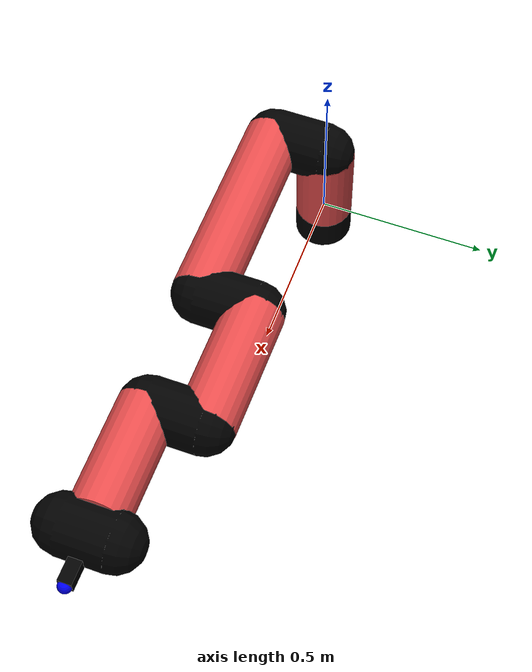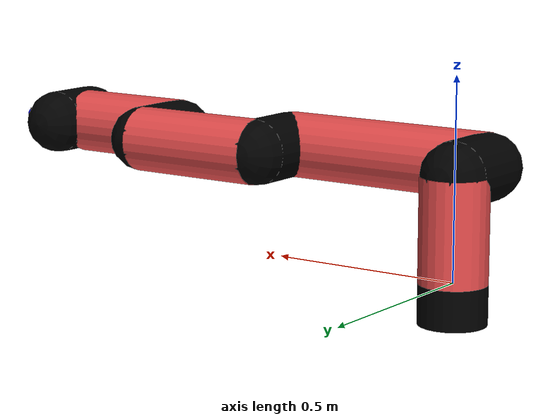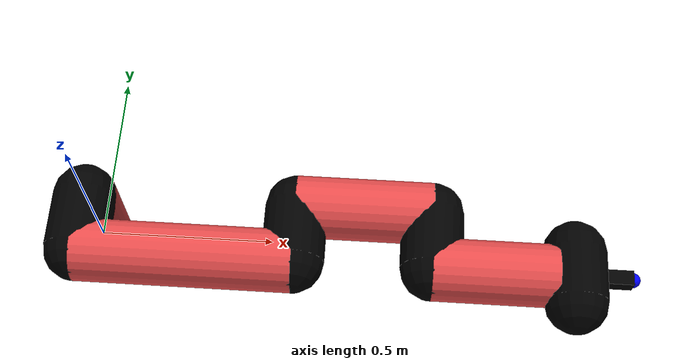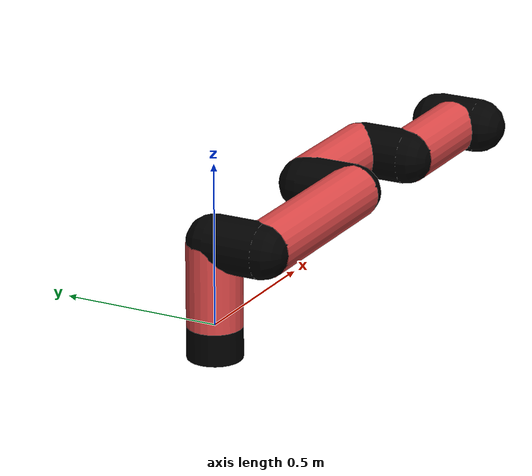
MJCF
<mujoco model="manipulator">
		<compiler angle="degree" coordinate="local" inertiafromgeom="auto" meshdir="meshes/"/>
		<option gravity="0 0 0" integrator="RK4" iterations="30" timestep="0.01"/>

		<default>
		<joint armature="1" limited="true" stiffness="10" damping="15" frictionloss="5.0"/>
		<geom conaffinity="1" condim="3" contype="1" friction=".5 .1 .1" margin="0.002"/>
		<motor ctrllimited="true"/>
		<position ctrllimited="true"/>
		</default>

		<asset>
		<texture builtin="gradient" height="100" rgb1="1.0 1.0 1.0" rgb2="1.0 1.0 1.0" type="skybox" width="100"/>
		<texture builtin="flat" height="32" name="arm_tex" rgb1="0.9 0.3 0.3" type="2d" width="32"/>
		<texture builtin="flat" height="32" name="gripper_tex" rgb1="0.0 0.0 0.0" type="cube" width="32"/>

		<material name="arm_mat" shininess="0.1" specular="0.1" texture="arm_tex"/>
		<material name="gripper_mat" shininess="1" specular="1" texture="gripper_tex"/>
		</asset>

		<worldbody>
		<light cutoff="45" diffuse=".8 .8 .8" dir="0 0.16 -1" directional="false" name="light" pos="0 -2.0 8.0" specular="0.3 0.3 0.3"/>

		<body name="base_link" pos="0 0 -0.1">
		<geom fromto="0 0 0 0 0 0.1" material="arm_mat" name="base_link" rgba="0.0 0.0 0.0 1" size="0.085" type="cylinder"/>
		</body>

		<body name="l1" pos="0 0 0">
<geom fromto="0 0 0 0 0 0.26" material="arm_mat" name="l1" rgba="0.9 0.3 0.3 1" size="0.085" type="cylinder"/>
<geom fromto="0 0 0.26 0 -0.16 0.26" material="arm_mat" name="l1_ex" rgba="0.0 0.0 0.0 1" size="0.085" type="capsule"/>
<joint axis="0 0 1" name="j1" pos="0 0 0" range="-90 90" damping="29.39" frictionloss="8.95"/>

<body name="l2" pos="0 -0.16 0.26">
<geom fromto="0 0 0 0.58 0 0" material="arm_mat" name="l2" rgba="0.9 0.3 0.3 1" size="0.085" type="cylinder"/>
<geom fromto="0.58 0 0 0.58 0.16 0" material="arm_mat" name="l2_ex" rgba="0.0 0.0 0.0 1" size="0.085" type="capsule"/>
<joint axis="-0.23 0.83 0.19" name="j2" pos="0 0 0" range="-90 60" damping="30.85" frictionloss="10.71"/>

<body name="l3" pos="0.58 0.16 0">
<geom fromto="0 0 0 0.37 0 0" material="arm_mat" name="l3" rgba="0.9 0.3 0.3 1" size="0.085" type="cylinder"/>
<geom fromto="0.37 0 0 0.37 -0.16 0" material="arm_mat" name="l3_ex" rgba="0.0 0.0 0.0 1" size="0.085" type="capsule"/>
<joint axis="-0.2 0.96 0.23" name="j3" pos="0 0 0" range="-30 60" damping="35.4" frictionloss="8.1"/>

<body name="l4" pos="0.37 -0.16 0">
<geom fromto="0 0 0 0.33 0 0" material="arm_mat" name="l4" rgba="0.9 0.3 0.3 1" size="0.085" type="cylinder"/>
<joint axis="0.02 1.1 -0.09" name="j4" pos="0 0 0" range="-30 60" damping="33.17" frictionloss="12.18"/>

<body name="gripper" pos="0.33 0 0">
<geom fromto="0.05 -0.07 0 0.05 0.07 0" material="gripper_mat" name="gripper" rgba="0.0 0.0 0.0 1" size="0.085" type="capsule"/><joint axis="1 0 0" name="j5" pos="0 0 0" range="-90 90" damping="15" frictionloss="5.0"/><body name="finger" pos="0.1 0 0">
<geom fromto="0 0.0 0 0.1 0.0 0" material="gripper_mat" name="finger" rgba="0.0 0.0 0.0 1" size="0.020 0.06 0.06" type="box"/>
</body>
<site name="current" pos="0.2 0. 0.0" rgba="0. 0. 1.0 1" size="0.02" type="sphere"/>
</body>
</body>
</body>
</body>
</body>
</worldbody>
<actuator>
<motor ctrllimited="true" ctrlrange="-1.0 1.0" joint="j1" gear="60.86"/>
<motor ctrllimited="true" ctrlrange="-1.0 1.0" joint="j2" gear="67.44"/>
<motor ctrllimited="true" ctrlrange="-1.0 1.0" joint="j3" gear="73.31"/>
<motor ctrllimited="true" ctrlrange="-1.0 1.0" joint="j4" gear="76.88"/>
<motor ctrllimited="true" ctrlrange="-1.0 1.0" joint="j5" gear="80"/>
</actuator>
</mujoco>
